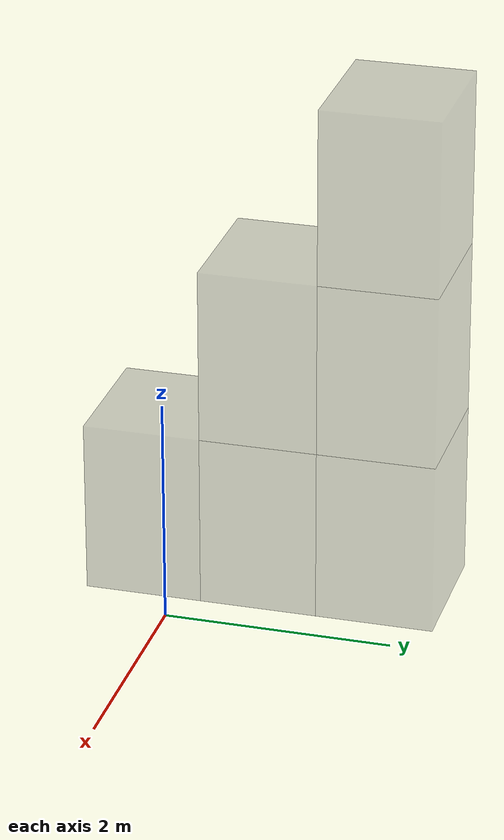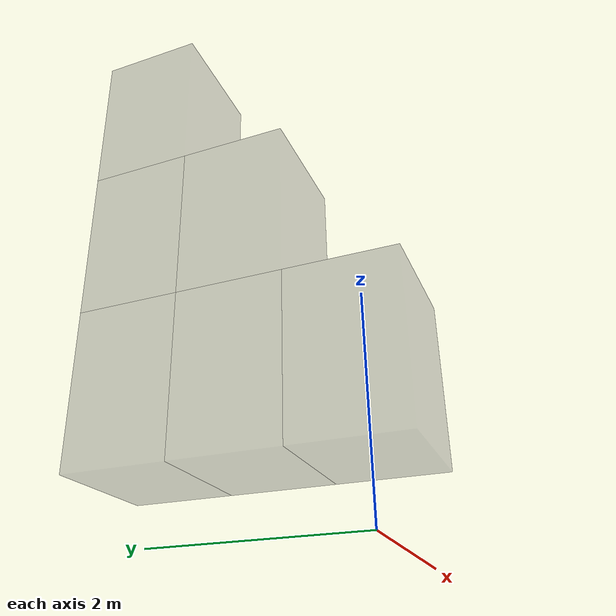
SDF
<?xml version='1.0'?>
<sdf version='1.6'>
  <model name='piramid_tmr'>
    <link name='link'>
      <inertial>
        <mass>1</mass>
        <inertia>
          <ixx>1</ixx>
          <ixy>0</ixy>
          <ixz>0</ixz>
          <iyy>1</iyy>
          <iyz>0</iyz>
          <izz>1</izz>
        </inertia>
        <pose frame=''>0 0 0 0 -0 0</pose>
      </inertial>
      <self_collide>0</self_collide>
      <enable_wind>0</enable_wind>
      <kinematic>0</kinematic>
      <pose frame=''>0 0 1.28195 0 -0 0</pose>
      <gravity>1</gravity>
      <visual name='ModelPreview_4::link::visual_5'>
        <geometry>
          <mesh>
            <uri>model://big_box/meshes/big_box.dae</uri>
          </mesh>
        </geometry>
        <pose frame=''>0 2 3 0 -0 0</pose>
        <transparency>0</transparency>
        <cast_shadows>1</cast_shadows>
        <material>
          <shader type='vertex'>
            <normal_map>__default__</normal_map>
          </shader>
          <script>
            <name>ModelPreview_4::link::visual_MATERIAL_</name>
            <uri>__default__</uri>
          </script>
          <ambient>0.4 0.4 0.5 1</ambient>
          <diffuse>0.3 0.3 0.3 0.3</diffuse>
          <specular>0 0 0 1</specular>
          <emissive>0 0 0 1</emissive>
        </material>
      </visual>
      <visual name='ModelPreview_4::link::visual_2'>
        <geometry>
          <mesh>
            <uri>model://big_box/meshes/big_box.dae</uri>
          </mesh>
        </geometry>
        <pose frame=''>0 2 0 0 -0 0</pose>
        <transparency>0</transparency>
        <cast_shadows>1</cast_shadows>
        <material>
          <shader type='vertex'>
            <normal_map>__default__</normal_map>
          </shader>
          <script>
            <name>ModelPreview_4::link::visual_MATERIAL_</name>
            <uri>__default__</uri>
          </script>
          <ambient>0.4 0.4 0.5 1</ambient>
          <diffuse>0.3 0.3 0.3 0.3</diffuse>
          <specular>0 0 0 1</specular>
          <emissive>0 0 0 1</emissive>
        </material>
      </visual>
      <visual name='ModelPreview_4::link::visual_1'>
        <geometry>
          <mesh>
            <uri>model://big_box/meshes/big_box.dae</uri>
          </mesh>
        </geometry>
        <pose frame=''>0 1 0 0 -0 0</pose>
        <transparency>0</transparency>
        <cast_shadows>1</cast_shadows>
        <material>
          <shader type='vertex'>
            <normal_map>__default__</normal_map>
          </shader>
          <script>
            <name>ModelPreview_4::link::visual_1_MATERIAL_</name>
            <uri>__default__</uri>
          </script>
          <ambient>0.4 0.4 0.5 1</ambient>
          <diffuse>0.3 0.3 0.3 0.3</diffuse>
          <specular>0 0 0 1</specular>
          <emissive>0 0 0 1</emissive>
        </material>
      </visual>
      <visual name='visual'>
        <geometry>
          <mesh>
            <uri>model://big_box/meshes/big_box.dae</uri>
          </mesh>
        </geometry>
        <pose frame=''>0 0 0 0 -0 0</pose>
        <transparency>0</transparency>
        <cast_shadows>1</cast_shadows>
        <material>
          <shader type='vertex'>
            <normal_map>__default__</normal_map>
          </shader>
          <script>
            <name>ModelPreview_4::link::visual_MATERIAL_</name>
            <uri>__default__</uri>
          </script>
          <ambient>0.4 0.4 0.7 1</ambient>
          <diffuse>0.3 0.3 0.3 0.3</diffuse>
          <specular>0 0 0 1</specular>
          <emissive>0 0 0 1</emissive>
        </material>
      </visual>
      <visual name='ModelPreview_4::link::visual_3'>
        <geometry>
          <mesh>
            <uri>model://big_box/meshes/big_box.dae</uri>
          </mesh>
        </geometry>
        <pose frame=''>0 1 1.5 0 -0 0</pose>
        <transparency>0</transparency>
        <cast_shadows>1</cast_shadows>
        <material>
          <shader type='vertex'>
            <normal_map>__default__</normal_map>
          </shader>
          <script>
            <name>ModelPreview_4::link::visual_MATERIAL_</name>
            <uri>__default__</uri>
          </script>
          <ambient>0.4 0.4 0.5 1</ambient>
          <diffuse>0.3 0.3 0.3 0.3</diffuse>
          <specular>0 0 0 1</specular>
          <emissive>0 0 0 1</emissive>
        </material>
      </visual>
      <visual name='ModelPreview_4::link::visual_4'>
        <geometry>
          <mesh>
            <uri>model://big_box/meshes/big_box.dae</uri>
          </mesh>
        </geometry>
        <pose frame=''>0 2 1.5 0 -0 0</pose>
        <transparency>0</transparency>
        <cast_shadows>1</cast_shadows>
        <material>
          <shader type='vertex'>
            <normal_map>__default__</normal_map>
          </shader>
          <script>
            <name>ModelPreview_4::link::visual_MATERIAL_</name>
            <uri>__default__</uri>
          </script>
          <ambient>0.4 0.4 0.5 1</ambient>
          <diffuse>0.3 0.3 0.3 0.3</diffuse>
          <specular>0 0 0 1</specular>
          <emissive>0 0 0 1</emissive>
        </material>
      </visual>
      <collision name='collision_5'>
        <laser_retro>0</laser_retro>
        <max_contacts>10</max_contacts>
        <pose frame=''>0 2 3 0 -0 0</pose>
        <geometry>
          <mesh>
            <uri>/home/rafaga22630/.gazebo/models/big_box/meshes/big_box.dae</uri>
            <scale>1 1 1</scale>
          </mesh>
        </geometry>
        <surface>
          <friction>
            <ode>
              <mu>1</mu>
              <mu2>1</mu2>
              <fdir1>0 0 0</fdir1>
              <slip1>0</slip1>
              <slip2>0</slip2>
            </ode>
            <torsional>
              <coefficient>1</coefficient>
              <patch_radius>0</patch_radius>
              <surface_radius>0</surface_radius>
              <use_patch_radius>1</use_patch_radius>
              <ode>
                <slip>0</slip>
              </ode>
            </torsional>
          </friction>
          <bounce>
            <restitution_coefficient>0</restitution_coefficient>
            <threshold>1e+06</threshold>
          </bounce>
          <contact>
            <collide_without_contact>0</collide_without_contact>
            <collide_without_contact_bitmask>1</collide_without_contact_bitmask>
            <collide_bitmask>1</collide_bitmask>
            <ode>
              <soft_cfm>0</soft_cfm>
              <soft_erp>0.2</soft_erp>
              <kp>1e+13</kp>
              <kd>1</kd>
              <max_vel>0.01</max_vel>
              <min_depth>0</min_depth>
            </ode>
            <bullet>
              <split_impulse>1</split_impulse>
              <split_impulse_penetration_threshold>-0.01</split_impulse_penetration_threshold>
              <soft_cfm>0</soft_cfm>
              <soft_erp>0.2</soft_erp>
              <kp>1e+13</kp>
              <kd>1</kd>
            </bullet>
          </contact>
        </surface>
      </collision>
      <collision name='collision_1'>
        <laser_retro>0</laser_retro>
        <max_contacts>10</max_contacts>
        <pose frame=''>0 1 1.5 0 -0 0</pose>
        <geometry>
          <mesh>
            <uri>/home/rafaga22630/.gazebo/models/big_box/meshes/big_box.dae</uri>
            <scale>1 1 1</scale>
          </mesh>
        </geometry>
        <surface>
          <friction>
            <ode>
              <mu>1</mu>
              <mu2>1</mu2>
              <fdir1>0 0 0</fdir1>
              <slip1>0</slip1>
              <slip2>0</slip2>
            </ode>
            <torsional>
              <coefficient>1</coefficient>
              <patch_radius>0</patch_radius>
              <surface_radius>0</surface_radius>
              <use_patch_radius>1</use_patch_radius>
              <ode>
                <slip>0</slip>
              </ode>
            </torsional>
          </friction>
          <bounce>
            <restitution_coefficient>0</restitution_coefficient>
            <threshold>1e+06</threshold>
          </bounce>
          <contact>
            <collide_without_contact>0</collide_without_contact>
            <collide_without_contact_bitmask>1</collide_without_contact_bitmask>
            <collide_bitmask>1</collide_bitmask>
            <ode>
              <soft_cfm>0</soft_cfm>
              <soft_erp>0.2</soft_erp>
              <kp>1e+13</kp>
              <kd>1</kd>
              <max_vel>0.01</max_vel>
              <min_depth>0</min_depth>
            </ode>
            <bullet>
              <split_impulse>1</split_impulse>
              <split_impulse_penetration_threshold>-0.01</split_impulse_penetration_threshold>
              <soft_cfm>0</soft_cfm>
              <soft_erp>0.2</soft_erp>
              <kp>1e+13</kp>
              <kd>1</kd>
            </bullet>
          </contact>
        </surface>
      </collision>
      <collision name='collision_2'>
        <laser_retro>0</laser_retro>
        <max_contacts>10</max_contacts>
        <pose frame=''>0 2 1.5 0 -0 0</pose>
        <geometry>
          <mesh>
            <uri>/home/rafaga22630/.gazebo/models/big_box/meshes/big_box.dae</uri>
            <scale>1 1 1</scale>
          </mesh>
        </geometry>
        <surface>
          <friction>
            <ode>
              <mu>1</mu>
              <mu2>1</mu2>
              <fdir1>0 0 0</fdir1>
              <slip1>0</slip1>
              <slip2>0</slip2>
            </ode>
            <torsional>
              <coefficient>1</coefficient>
              <patch_radius>0</patch_radius>
              <surface_radius>0</surface_radius>
              <use_patch_radius>1</use_patch_radius>
              <ode>
                <slip>0</slip>
              </ode>
            </torsional>
          </friction>
          <bounce>
            <restitution_coefficient>0</restitution_coefficient>
            <threshold>1e+06</threshold>
          </bounce>
          <contact>
            <collide_without_contact>0</collide_without_contact>
            <collide_without_contact_bitmask>1</collide_without_contact_bitmask>
            <collide_bitmask>1</collide_bitmask>
            <ode>
              <soft_cfm>0</soft_cfm>
              <soft_erp>0.2</soft_erp>
              <kp>1e+13</kp>
              <kd>1</kd>
              <max_vel>0.01</max_vel>
              <min_depth>0</min_depth>
            </ode>
            <bullet>
              <split_impulse>1</split_impulse>
              <split_impulse_penetration_threshold>-0.01</split_impulse_penetration_threshold>
              <soft_cfm>0</soft_cfm>
              <soft_erp>0.2</soft_erp>
              <kp>1e+13</kp>
              <kd>1</kd>
            </bullet>
          </contact>
        </surface>
      </collision>
      <collision name='collision_4'>
        <laser_retro>0</laser_retro>
        <max_contacts>10</max_contacts>
        <pose frame=''>0 2 0 0 -0 0</pose>
        <geometry>
          <mesh>
            <uri>/home/rafaga22630/.gazebo/models/big_box/meshes/big_box.dae</uri>
            <scale>1 1 1</scale>
          </mesh>
        </geometry>
        <surface>
          <friction>
            <ode>
              <mu>1</mu>
              <mu2>1</mu2>
              <fdir1>0 0 0</fdir1>
              <slip1>0</slip1>
              <slip2>0</slip2>
            </ode>
            <torsional>
              <coefficient>1</coefficient>
              <patch_radius>0</patch_radius>
              <surface_radius>0</surface_radius>
              <use_patch_radius>1</use_patch_radius>
              <ode>
                <slip>0</slip>
              </ode>
            </torsional>
          </friction>
          <bounce>
            <restitution_coefficient>0</restitution_coefficient>
            <threshold>1e+06</threshold>
          </bounce>
          <contact>
            <collide_without_contact>0</collide_without_contact>
            <collide_without_contact_bitmask>1</collide_without_contact_bitmask>
            <collide_bitmask>1</collide_bitmask>
            <ode>
              <soft_cfm>0</soft_cfm>
              <soft_erp>0.2</soft_erp>
              <kp>1e+13</kp>
              <kd>1</kd>
              <max_vel>0.01</max_vel>
              <min_depth>0</min_depth>
            </ode>
            <bullet>
              <split_impulse>1</split_impulse>
              <split_impulse_penetration_threshold>-0.01</split_impulse_penetration_threshold>
              <soft_cfm>0</soft_cfm>
              <soft_erp>0.2</soft_erp>
              <kp>1e+13</kp>
              <kd>1</kd>
            </bullet>
          </contact>
        </surface>
      </collision>
      <collision name='collision'>
        <laser_retro>0</laser_retro>
        <max_contacts>10</max_contacts>
        <pose frame=''>0 0 0 0 -0 0</pose>
        <geometry>
          <mesh>
            <uri>/home/rafaga22630/.gazebo/models/big_box/meshes/big_box.dae</uri>
            <scale>1 1 1</scale>
          </mesh>
        </geometry>
        <surface>
          <friction>
            <ode>
              <mu>1</mu>
              <mu2>1</mu2>
              <fdir1>0 0 0</fdir1>
              <slip1>0</slip1>
              <slip2>0</slip2>
            </ode>
            <torsional>
              <coefficient>1</coefficient>
              <patch_radius>0</patch_radius>
              <surface_radius>0</surface_radius>
              <use_patch_radius>1</use_patch_radius>
              <ode>
                <slip>0</slip>
              </ode>
            </torsional>
          </friction>
          <bounce>
            <restitution_coefficient>0</restitution_coefficient>
            <threshold>1e+06</threshold>
          </bounce>
          <contact>
            <collide_without_contact>0</collide_without_contact>
            <collide_without_contact_bitmask>1</collide_without_contact_bitmask>
            <collide_bitmask>1</collide_bitmask>
            <ode>
              <soft_cfm>0</soft_cfm>
              <soft_erp>0.2</soft_erp>
              <kp>1e+13</kp>
              <kd>1</kd>
              <max_vel>0.1</max_vel>
              <min_depth>0.001</min_depth>
            </ode>
            <bullet>
              <split_impulse>1</split_impulse>
              <split_impulse_penetration_threshold>-0.01</split_impulse_penetration_threshold>
              <soft_cfm>0</soft_cfm>
              <soft_erp>0.2</soft_erp>
              <kp>1e+13</kp>
              <kd>1</kd>
            </bullet>
          </contact>
        </surface>
      </collision>
      <collision name='collision_3'>
        <laser_retro>0</laser_retro>
        <max_contacts>10</max_contacts>
        <pose frame=''>0 1 0 0 -0 0</pose>
        <geometry>
          <mesh>
            <uri>/home/rafaga22630/.gazebo/models/big_box/meshes/big_box.dae</uri>
            <scale>1 1 1</scale>
          </mesh>
        </geometry>
        <surface>
          <friction>
            <ode>
              <mu>1</mu>
              <mu2>1</mu2>
              <fdir1>0 0 0</fdir1>
              <slip1>0</slip1>
              <slip2>0</slip2>
            </ode>
            <torsional>
              <coefficient>1</coefficient>
              <patch_radius>0</patch_radius>
              <surface_radius>0</surface_radius>
              <use_patch_radius>1</use_patch_radius>
              <ode>
                <slip>0</slip>
              </ode>
            </torsional>
          </friction>
          <bounce>
            <restitution_coefficient>0</restitution_coefficient>
            <threshold>1e+06</threshold>
          </bounce>
          <contact>
            <collide_without_contact>0</collide_without_contact>
            <collide_without_contact_bitmask>1</collide_without_contact_bitmask>
            <collide_bitmask>1</collide_bitmask>
            <ode>
              <soft_cfm>0</soft_cfm>
              <soft_erp>0.2</soft_erp>
              <kp>1e+13</kp>
              <kd>1</kd>
              <max_vel>0.01</max_vel>
              <min_depth>0</min_depth>
            </ode>
            <bullet>
              <split_impulse>1</split_impulse>
              <split_impulse_penetration_threshold>-0.01</split_impulse_penetration_threshold>
              <soft_cfm>0</soft_cfm>
              <soft_erp>0.2</soft_erp>
              <kp>1e+13</kp>
              <kd>1</kd>
            </bullet>
          </contact>
        </surface>
      </collision>
    </link>
    <static>0</static>
    <allow_auto_disable>1</allow_auto_disable>
  </model>
</sdf>
